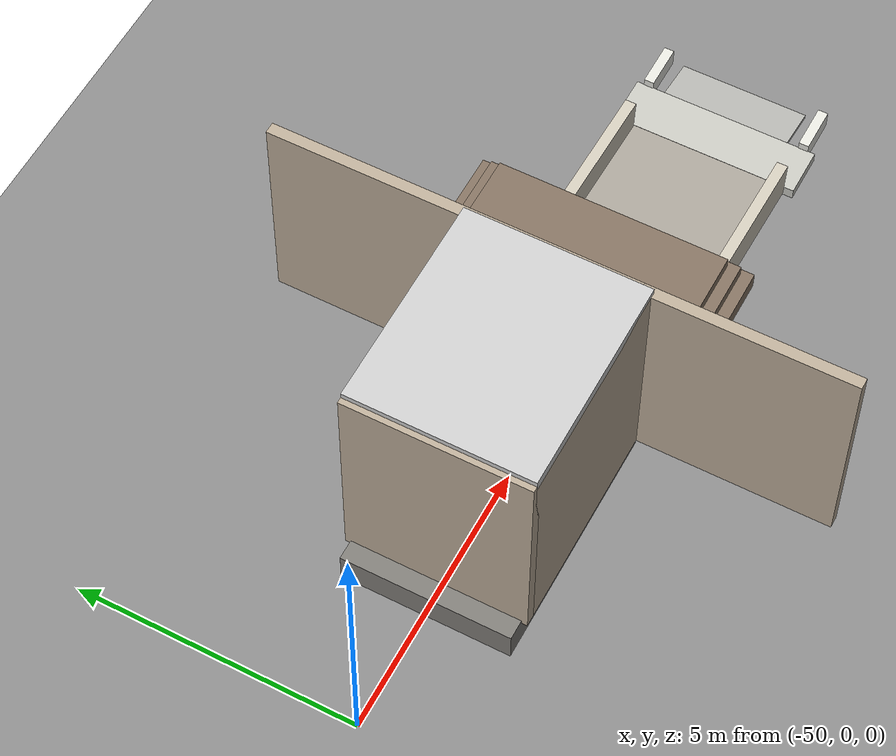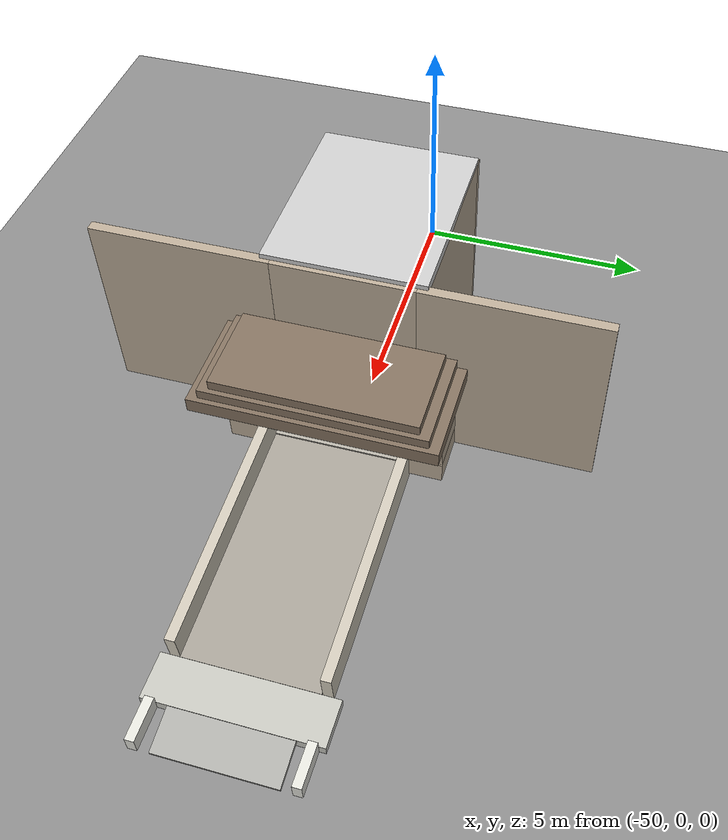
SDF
<sdf version="1.10">
 <world name="swan_town">
  <model name="ground_environment">
   <pose>-35.98 0 -0.05 0 0 3.14159265359</pose>
   <static>true</static>
   <link name="ground">
    <collision name="collision">
     <geometry><plane><normal>0 0 1</normal><size>50 50</size></plane></geometry>
    </collision>
    <visual name="visual">
     <geometry><plane><normal>0 0 1</normal><size>50 50</size></plane></geometry>
     <material>
      <ambient>0.55 0.55 0.55 1</ambient>
      <diffuse>0.55 0.55 0.55 1</diffuse>
      <pbr><metal><roughness>0.95</roughness></metal></pbr>
     </material>
    </visual>
   </link>
  </model>
  <model name="wheelchair_ramp">
   <pose>-35.98 0 -0.05 0 0 3.14159265359</pose>
   <static>true</static>
   <link name="entrance_landing">
    <pose>7.20 0 0.46 0 0 0</pose>
    <collision name="collision"><geometry><box><size>1.0 3.0 0.22</size></box></geometry></collision>
    <visual name="visual">
     <geometry><box><size>1.0 3.0 0.22</size></box></geometry>
     <material><ambient>0.72 0.70 0.66 1</ambient><diffuse>0.72 0.70 0.66 1</diffuse></material>
    </visual>
   </link>
   <link name="ramp_floor">
    <pose>4.45 0 0.325 0 -0.0686 0</pose>
    <collision name="collision"><geometry><box><size>5.4 2.65 0.12</size></box></geometry></collision>
    <visual name="visual">
     <geometry><box><size>5.4 2.65 0.12</size></box></geometry>
     <material>
      <ambient>0.66 0.64 0.60 1</ambient>
      <diffuse>0.66 0.64 0.60 1</diffuse>
      <pbr><metal><roughness>0.95</roughness></metal></pbr>
     </material>
    </visual>
   </link>
   <link name="ramp_wall_left">
    <pose>4.45 -1.43 0.60 0 -0.0686 0</pose>
    <collision name="collision"><geometry><box><size>5.4 0.20 0.70</size></box></geometry></collision>
    <visual name="visual">
     <geometry><box><size>5.4 0.20 0.70</size></box></geometry>
     <material><ambient>0.82 0.79 0.73 1</ambient><diffuse>0.82 0.79 0.73 1</diffuse></material>
    </visual>
   </link>
   <link name="ramp_wall_right">
    <pose>4.45 1.43 0.60 0 -0.0686 0</pose>
    <collision name="collision"><geometry><box><size>5.4 0.20 0.70</size></box></geometry></collision>
    <visual name="visual">
     <geometry><box><size>5.4 0.20 0.70</size></box></geometry>
     <material><ambient>0.82 0.79 0.73 1</ambient><diffuse>0.82 0.79 0.73 1</diffuse></material>
    </visual>
   </link>
   <link name="bottom_sidewalk">
    <pose>1.30 0 0.10 0 0 0</pose>
    <collision name="collision"><geometry><box><size>0.90 3.40 0.20</size></box></geometry></collision>
    <visual name="visual">
     <geometry><box><size>0.90 3.40 0.20</size></box></geometry>
     <material><ambient>0.78 0.78 0.75 1</ambient><diffuse>0.78 0.78 0.75 1</diffuse></material>
    </visual>
   </link>
   <link name="curb_ramp">
    <pose>0.45 0 0.085 0 -0.167 0</pose>
    <collision name="collision"><geometry><box><size>0.82 2.35 0.08</size></box></geometry></collision>
    <visual name="visual">
     <geometry><box><size>0.82 2.35 0.08</size></box></geometry>
     <material><ambient>0.70 0.70 0.68 1</ambient><diffuse>0.70 0.70 0.68 1</diffuse></material>
    </visual>
   </link>
   <link name="curb_left">
    <pose>0.45 -1.48 0.17 0 0 0</pose>
    <collision name="collision"><geometry><box><size>0.82 0.18 0.34</size></box></geometry></collision>
    <visual name="visual">
     <geometry><box><size>0.82 0.18 0.34</size></box></geometry>
     <material><ambient>0.90 0.90 0.87 1</ambient><diffuse>0.90 0.90 0.87 1</diffuse></material>
    </visual>
   </link>
   <link name="curb_right">
    <pose>0.45 1.48 0.17 0 0 0</pose>
    <collision name="collision"><geometry><box><size>0.82 0.18 0.34</size></box></geometry></collision>
    <visual name="visual">
     <geometry><box><size>0.82 0.18 0.34</size></box></geometry>
     <material><ambient>0.90 0.90 0.87 1</ambient><diffuse>0.90 0.90 0.87 1</diffuse></material>
    </visual>
   </link>
  </model>
  <model name="lobby_floor">
   <pose>-35.98 0 -0.05 0 0 3.14159265359</pose>
   <static>true</static>
   <link name="floor">
    <pose>9.65 0 0.285 0 0 0</pose>
    <collision name="collision"><geometry><box><size>4.4 3.0 0.57</size></box></geometry></collision>
    <visual name="visual">
     <geometry><box><size>4.4 3.0 0.57</size></box></geometry>
     <material>
      <ambient>0.50 0.49 0.47 1</ambient>
      <diffuse>0.50 0.49 0.47 1</diffuse>
      <pbr><metal><roughness>0.92</roughness><metalness>0.0</metalness></metal></pbr>
     </material>
    </visual>
   </link>
  </model>
  <model name="building_structure">
   <static>true</static>
   <pose>-40.98 6.12323399574e-16 -0.05 0 0 1.57079665359</pose>
   <link name="front_wall_left">
    <pose>-3.2 2.6 2.5 0 0 0</pose>
    <visual name="visual">
     <geometry><box><size>3.6 0.2 4.0</size></box></geometry>
     <material><ambient>0.74 0.68 0.6 1</ambient><diffuse>0.74 0.68 0.6 1</diffuse></material>
    </visual>
    <collision name="collision"><geometry><box><size>3.6 0.2 4.0</size></box></geometry></collision>
   </link>
   <link name="front_wall_right">
    <pose>3.2 2.6 2.5 0 0 0</pose>
    <visual name="visual">
     <geometry><box><size>3.6 0.2 4.0</size></box></geometry>
     <material><ambient>0.74 0.68 0.6 1</ambient><diffuse>0.74 0.68 0.6 1</diffuse></material>
    </visual>
    <collision name="collision"><geometry><box><size>3.6 0.2 4.0</size></box></geometry></collision>
   </link>
   <link name="front_wall_top">
    <pose>0 2.6 3.5 0 0 0</pose>
    <visual name="visual">
     <geometry><box><size>2.8 0.2 2.0</size></box></geometry>
     <material><ambient>0.74 0.68 0.6 1</ambient><diffuse>0.74 0.68 0.6 1</diffuse></material>
    </visual>
    <collision name="collision"><geometry><box><size>2.8 0.2 2.0</size></box></geometry></collision>
   </link>
   <link name="lobby_wall_left">
    <pose>-1.5 4.5 2.5 0 0 0</pose>
    <visual name="visual">
     <geometry><box><size>0.2 3.8 4.0</size></box></geometry>
     <material><ambient>0.74 0.68 0.6 1</ambient><diffuse>0.74 0.68 0.6 1</diffuse></material>
    </visual>
    <collision name="collision"><geometry><box><size>0.2 3.8 4.0</size></box></geometry></collision>
   </link>
   <link name="lobby_wall_right">
    <pose>1.5 4.5 2.5 0 0 0</pose>
    <visual name="visual">
     <geometry><box><size>0.2 3.8 4.0</size></box></geometry>
     <material><ambient>0.74 0.68 0.6 1</ambient><diffuse>0.74 0.68 0.6 1</diffuse></material>
    </visual>
    <collision name="collision"><geometry><box><size>0.2 3.8 4.0</size></box></geometry></collision>
   </link>
   <link name="lobby_wall_back">
    <pose>0 6.4 2.5 0 0 0</pose>
    <visual name="visual">
     <geometry><box><size>3.2 0.2 4.0</size></box></geometry>
     <material><ambient>0.74 0.68 0.6 1</ambient><diffuse>0.74 0.68 0.6 1</diffuse></material>
    </visual>
    <collision name="collision"><geometry><box><size>3.2 0.2 4.0</size></box></geometry></collision>
   </link>
   <link name="lobby_ceiling">
    <pose>0 4.5 4.5 0 0 0</pose>
    <visual name="visual">
     <geometry><box><size>3.2 3.8 0.2</size></box></geometry>
     <material><ambient>0.8 0.8 0.8 1</ambient><diffuse>0.8 0.8 0.8 1</diffuse></material>
    </visual>
    <collision name="collision"><geometry><box><size>3.2 3.8 0.2</size></box></geometry></collision>
   </link>
   <light name="lobby_light" type="point">
    <pose>0 4.5 3.5 0 0 0</pose>
    <diffuse>0.9 0.85 0.7 1</diffuse>
    <specular>0.2 0.2 0.2 1</specular>
    <attenuation><range>10</range><constant>0.5</constant><linear>0.1</linear></attenuation>
   </light>
   <link name="pillar_left_1">
    <pose>-1.8 2.0 0.74 0 0 0</pose>
    <visual name="visual">
     <geometry><box><size>0.8 1.0 0.46</size></box></geometry>
     <material><ambient>0.74 0.68 0.6 1</ambient><diffuse>0.74 0.68 0.6 1</diffuse></material>
    </visual>
    <collision name="collision"><geometry><box><size>0.8 1.0 0.46</size></box></geometry></collision>
   </link>
   <link name="pillar_left_2">
    <pose>-1.8 2.0 1.24 0 0 0</pose>
    <visual name="visual">
     <geometry><box><size>0.8 1.0 0.46</size></box></geometry>
     <material><ambient>0.74 0.68 0.6 1</ambient><diffuse>0.74 0.68 0.6 1</diffuse></material>
    </visual>
    <collision name="collision"><geometry><box><size>0.8 1.0 0.46</size></box></geometry></collision>
   </link>
   <link name="pillar_left_3">
    <pose>-1.8 2.0 1.74 0 0 0</pose>
    <visual name="visual">
     <geometry><box><size>0.8 1.0 0.46</size></box></geometry>
     <material><ambient>0.74 0.68 0.6 1</ambient><diffuse>0.74 0.68 0.6 1</diffuse></material>
    </visual>
    <collision name="collision"><geometry><box><size>0.8 1.0 0.46</size></box></geometry></collision>
   </link>
   <link name="pillar_left_4">
    <pose>-1.8 2.0 2.24 0 0 0</pose>
    <visual name="visual">
     <geometry><box><size>0.8 1.0 0.46</size></box></geometry>
     <material><ambient>0.74 0.68 0.6 1</ambient><diffuse>0.74 0.68 0.6 1</diffuse></material>
    </visual>
    <collision name="collision"><geometry><box><size>0.8 1.0 0.46</size></box></geometry></collision>
   </link>
   <link name="pillar_right_1">
    <pose>1.8 2.0 0.74 0 0 0</pose>
    <visual name="visual">
     <geometry><box><size>0.8 1.0 0.46</size></box></geometry>
     <material><ambient>0.74 0.68 0.6 1</ambient><diffuse>0.74 0.68 0.6 1</diffuse></material>
    </visual>
    <collision name="collision"><geometry><box><size>0.8 1.0 0.46</size></box></geometry></collision>
   </link>
   <link name="pillar_right_2">
    <pose>1.8 2.0 1.24 0 0 0</pose>
    <visual name="visual">
     <geometry><box><size>0.8 1.0 0.46</size></box></geometry>
     <material><ambient>0.74 0.68 0.6 1</ambient><diffuse>0.74 0.68 0.6 1</diffuse></material>
    </visual>
    <collision name="collision"><geometry><box><size>0.8 1.0 0.46</size></box></geometry></collision>
   </link>
   <link name="pillar_right_3">
    <pose>1.8 2.0 1.74 0 0 0</pose>
    <visual name="visual">
     <geometry><box><size>0.8 1.0 0.46</size></box></geometry>
     <material><ambient>0.74 0.68 0.6 1</ambient><diffuse>0.74 0.68 0.6 1</diffuse></material>
    </visual>
    <collision name="collision"><geometry><box><size>0.8 1.0 0.46</size></box></geometry></collision>
   </link>
   <link name="pillar_right_4">
    <pose>1.8 2.0 2.24 0 0 0</pose>
    <visual name="visual">
     <geometry><box><size>0.8 1.0 0.46</size></box></geometry>
     <material><ambient>0.74 0.68 0.6 1</ambient><diffuse>0.74 0.68 0.6 1</diffuse></material>
    </visual>
    <collision name="collision"><geometry><box><size>0.8 1.0 0.46</size></box></geometry></collision>
   </link>
   <link name="canopy_base">
    <pose>0 1.5 2.6 0 0 0</pose>
    <visual name="visual">
     <geometry><box><size>4.8 2.2 0.3</size></box></geometry>
     <material><ambient>0.52 0.45 0.38 1</ambient><diffuse>0.52 0.45 0.38 1</diffuse></material>
    </visual>
    <collision name="collision"><geometry><box><size>4.8 2.2 0.3</size></box></geometry></collision>
   </link>
   <link name="canopy_mid">
    <pose>0 1.5 2.85 0 0 0</pose>
    <visual name="visual">
     <geometry><box><size>4.4 2.0 0.2</size></box></geometry>
     <material><ambient>0.52 0.45 0.38 1</ambient><diffuse>0.52 0.45 0.38 1</diffuse></material>
    </visual>
   </link>
   <link name="canopy_top">
    <pose>0 1.5 3.05 0 0 0</pose>
    <visual name="visual">
     <geometry><box><size>4.0 1.8 0.2</size></box></geometry>
     <material><ambient>0.52 0.45 0.38 1</ambient><diffuse>0.52 0.45 0.38 1</diffuse></material>
    </visual>
   </link>
   <link name="door_frame_top">
    <pose>0 2.45 2.55 0 0 0</pose>
    <visual name="visual">
     <geometry><box><size>2.8 0.1 0.1</size></box></geometry>
     <material><ambient>0.15 0.15 0.15 1</ambient><diffuse>0.15 0.15 0.15 1</diffuse></material>
    </visual>
    <collision name="collision"><geometry><box><size>2.8 0.1 0.1</size></box></geometry></collision>
   </link>
   <link name="door_frame_left">
    <pose>-1.35 2.45 1.5 0 0 0</pose>
    <visual name="visual">
     <geometry><box><size>0.1 0.1 2.0</size></box></geometry>
     <material><ambient>0.15 0.15 0.15 1</ambient><diffuse>0.15 0.15 0.15 1</diffuse></material>
    </visual>
    <collision name="collision"><geometry><box><size>0.1 0.1 2.0</size></box></geometry></collision>
   </link>
   <link name="door_frame_right">
    <pose>1.35 2.45 1.5 0 0 0</pose>
    <visual name="visual">
     <geometry><box><size>0.1 0.1 2.0</size></box></geometry>
     <material><ambient>0.15 0.15 0.15 1</ambient><diffuse>0.15 0.15 0.15 1</diffuse></material>
    </visual>
    <collision name="collision"><geometry><box><size>0.1 0.1 2.0</size></box></geometry></collision>
   </link>
  </model>
  <model name="ground_plane">
   <pose>-14 30 -0.025 0 0 0</pose>
   <static>true</static>
   <link name="link">
    <collision name="collision">
     <geometry><plane><normal>0 0 1</normal><size>100 100</size></plane></geometry>
    </collision>
    <visual name="visual">
     <geometry><plane><normal>0 0 1</normal><size>100 100</size></plane></geometry>
     <material><ambient>0.3 0.5 0.2 1</ambient><diffuse>0.3 0.5 0.2 1</diffuse></material>
    </visual>
   </link>
  </model>
  <model name="ground">
   <static>true</static>
   <pose>15 0 -0.1 0 0 0</pose>
   <link name="body">
    <collision name="box_collision"><geometry><box><size>46 24 0.2</size></box></geometry></collision>
    <visual name="box_visual">
     <geometry><box><size>46 24 0.2</size></box></geometry>
     <material><ambient>0.64 0.61 0.55 1</ambient><diffuse>0.64 0.61 0.55 1</diffuse></material>
    </visual>
   </link>
  </model>
 </world>
</sdf>
